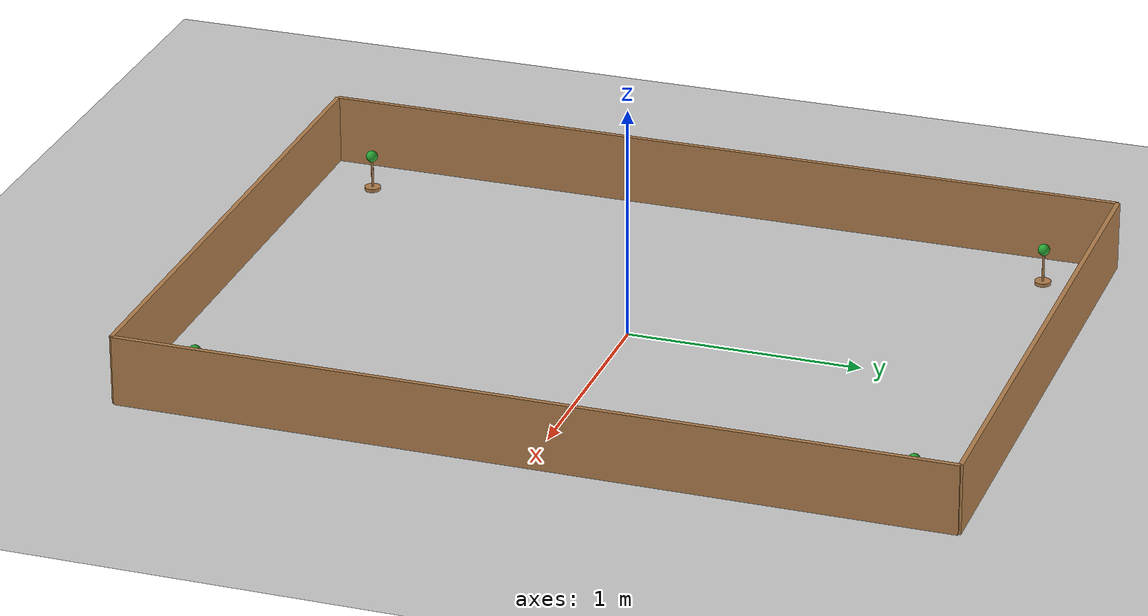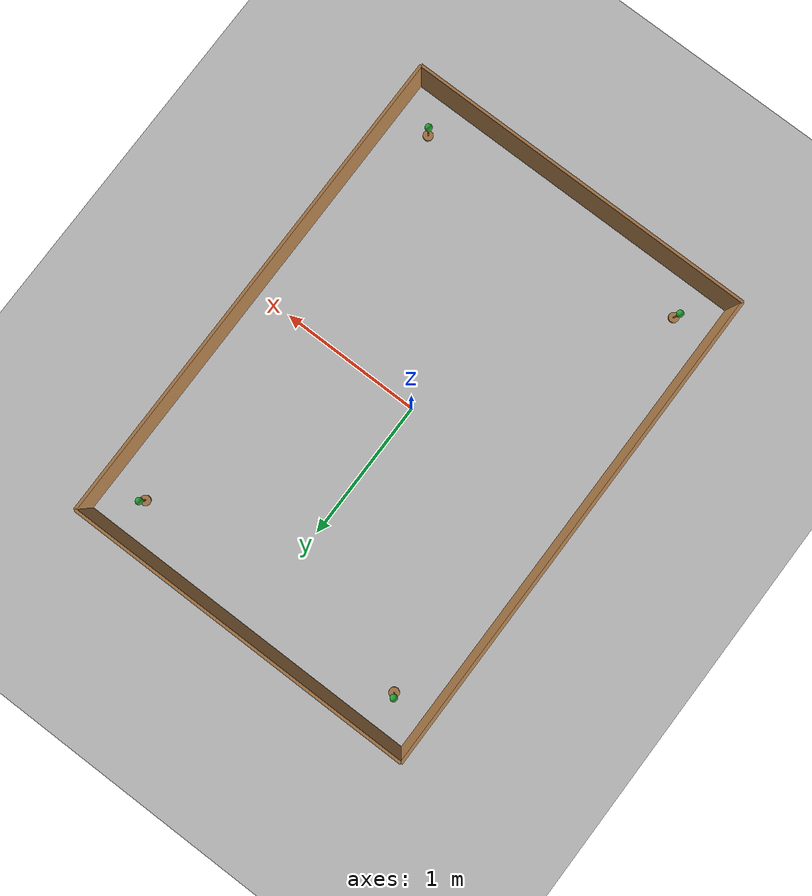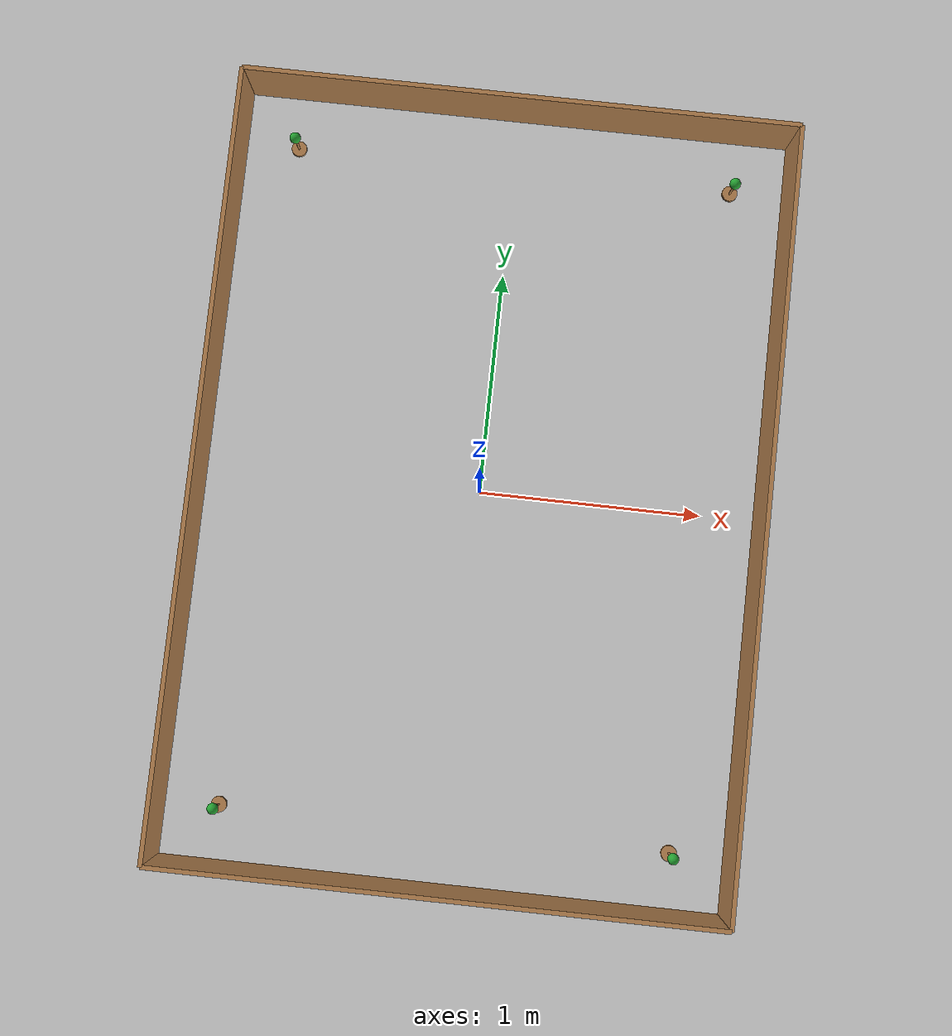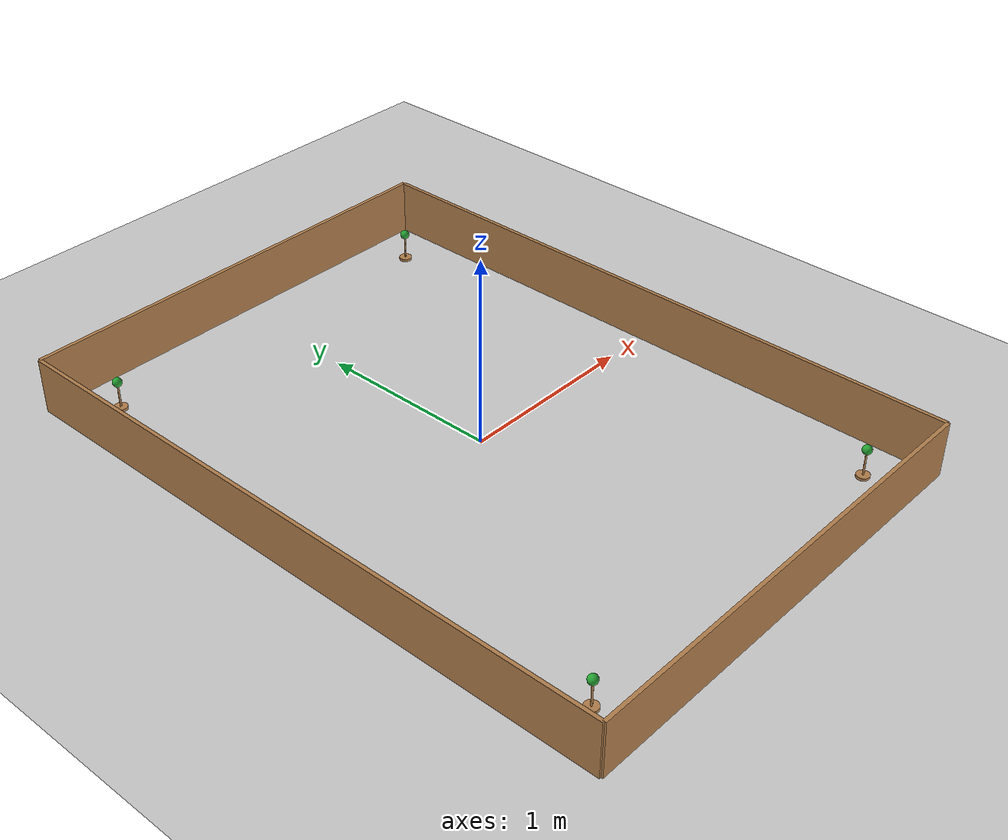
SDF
<?xml version="1.0" ?>
<sdf version="1.4">
  <world name="default">

    <gui>
      <camera name="default">
        <pose>0.25 -4.5 2.5 0 0.5 1.57</pose>
      </camera>
    </gui>

    <scene>
      <ambient>0.8 0.8 0.8 1</ambient>
      <background>0.7 0.7 0.7 1</background>
      <shadows>true</shadows>
    </scene>

    <!-- Add the ground -->
    <include>
      <uri>model://ground_plane</uri>
    </include>

    <include>
      <uri>model://walls</uri>
    </include>

    <include>
      <uri>model://mannequin</uri>
      <name>mannequin_NW</name>
      <pose>1 1.5 0 0 0 0</pose>
    </include>

    <include>
      <uri>model://mannequin</uri>
      <name>mannequin_NE</name>
      <pose>1 -1.5 0 0 0 0</pose>
    </include>

    <include>
      <uri>model://mannequin</uri>
      <name>mannequin_SE</name>
      <pose>-1 -1.5 0 0 0 0</pose>
    </include>

    <include>
      <uri>model://mannequin</uri>
      <name>mannequin_SW</name>
      <pose>-1 1.5 0 0 0 0</pose>
    </include>

  </world>
</sdf>

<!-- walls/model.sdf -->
<sdf version="1.6">
	<model name="christmas_walls">
		<link name="Wall_North">
			<pose frame=''>1.25 0 0 0 0 -1.5708</pose>
			<self_collide>0</self_collide>
			<kinematic>0</kinematic>

			<visual name="Wall_North_Visual">
				<pose frame=''>0 0 0.15 0 0 0</pose>

				<geometry>
					<box>
						<size>3.5 0.02 0.3</size>
					</box>
				</geometry>

				<material>
					<script>
						<uri>file://media/materials/scripts/gazebo.material</uri>
						<name>Gazebo/Wood</name>
					</script>

					<ambient>1 1 1 1</ambient>
					<diffuse>1 1 1 1</diffuse>
					<specular>0.2 0.2 0.2 1</specular>
					<emissive>0 0 0 1</emissive>
				</material>

				<cast_shadows>1</cast_shadows>
				<transparency>0</transparency>
			</visual>

			<collision name="Wall_North_Collision">
				<laser_retro>0</laser_retro>
				<max_contacts>10</max_contacts>
				<pose frame=''>0 0 0.15 0 0 0</pose>

				<geometry>
					<box>
						<size>3.5 0.02 0.3</size>
					</box>
				</geometry>

				<surface>
          			<friction>
            			<ode>
              				<mu>10</mu>
              				<mu2>10</mu2>
              				<fdir1>0 0 0</fdir1>
              				<slip1>0</slip1>
              				<slip2>0</slip2>
            			</ode>
            			<torsional>
              				<coefficient>1</coefficient>
              				<patch_radius>0</patch_radius>
              				<surface_radius>0</surface_radius>
              				<use_patch_radius>1</use_patch_radius>
              				<ode>
	                			<slip>0</slip>
              				</ode>
            			</torsional>
          			</friction>

          			<bounce>
            			<restitution_coefficient>0</restitution_coefficient>
            			<threshold>1e+06</threshold>
          			</bounce>

          			<contact>
            			<collide_without_contact>0</collide_without_contact>
            			<collide_without_contact_bitmask>1</collide_without_contact_bitmask>
            			<collide_bitmask>1</collide_bitmask>
            			<ode>
              				<soft_cfm>0</soft_cfm>
              				<soft_erp>0.2</soft_erp>
              				<kp>1e+13</kp>
              				<kd>1</kd>
              				<max_vel>0.01</max_vel>
              				<min_depth>0</min_depth>
            			</ode>
            			<bullet>
              				<split_impulse>1</split_impulse>
              				<split_impulse_penetration_threshold>-0.01</split_impulse_penetration_threshold>
              				<soft_cfm>0</soft_cfm>
              				<soft_erp>0.2</soft_erp>
              				<kp>1e+13</kp>
              				<kd>1</kd>
            			</bullet>
          			</contact>
        		</surface>
			</collision>

			<inertial>
			  <pose>0 0 0.15 0 0 0</pose>
			  <mass>1</mass>
			  <inertia>
			  	<ixx>0.0199</ixx>
			  	<iyy>1.019</iyy>
			  	<izz>1</izz>
			  	<ixy>0</ixy>
			  	<ixz>0</ixz>
			  	<iyz>0</iyz>
			  </inertia>
			</inertial>
		</link>

		<link name="Wall_South">
			<pose frame=''>-1.25 0 0 0 0 1.5708</pose>
			<self_collide>0</self_collide>
			<kinematic>0</kinematic>

			<visual name="Wall_South_Visual">
				<pose frame=''>0 0 0.15 0 0 0</pose>

				<geometry>
					<box>
						<size>3.5 0.02 0.3</size>
					</box>
				</geometry>

				<material>
					<script>
						<uri>file://media/materials/scripts/gazebo.material</uri>
						<name>Gazebo/Wood</name>
					</script>

					<ambient>1 1 1 1</ambient>
					<diffulse>1 1 1 1</diffulse>
					<specular>0.2 0.2 0.2 1</specular>
					<emissive>0 0 0 1</emissive>
				</material>

				<cast_shadows>1</cast_shadows>
				<transparency>0</transparency>
			</visual>

			<collision name="Wall_South_Collision">
				<laser_retro>0</laser_retro>
				<max_contacts>10</max_contacts>
				<pose frame=''>0 0 0.15 0 0 0</pose>

				<geometry>
					<box>
						<size>3.5 0.02 0.3</size>
					</box>
				</geometry>

				<surface>
          			<friction>
            			<ode>
              				<mu>1</mu>
              				<mu2>1</mu2>
              				<fdir1>0 0 0</fdir1>
              				<slip1>0</slip1>
              				<slip2>0</slip2>
            			</ode>
            			<torsional>
              				<coefficient>1</coefficient>
              				<patch_radius>0</patch_radius>
              				<surface_radius>0</surface_radius>
              				<use_patch_radius>1</use_patch_radius>
              				<ode>
	                			<slip>0</slip>
              				</ode>
            			</torsional>
          			</friction>

          			<bounce>
            			<restitution_coefficient>0</restitution_coefficient>
            			<threshold>1e+06</threshold>
          			</bounce>

          			<contact>
            			<collide_without_contact>0</collide_without_contact>
            			<collide_without_contact_bitmask>1</collide_without_contact_bitmask>
            			<collide_bitmask>1</collide_bitmask>
            			<ode>
              				<soft_cfm>0</soft_cfm>
              				<soft_erp>0.2</soft_erp>
              				<kp>1e+13</kp>
              				<kd>1</kd>
              				<max_vel>0.01</max_vel>
              				<min_depth>0</min_depth>
            			</ode>
            			<bullet>
              				<split_impulse>1</split_impulse>
              				<split_impulse_penetration_threshold>-0.01</split_impulse_penetration_threshold>
              				<soft_cfm>0</soft_cfm>
              				<soft_erp>0.2</soft_erp>
              				<kp>1e+13</kp>
              				<kd>1</kd>
            			</bullet>
          			</contact>
        		</surface>
			</collision>
			<inertial>
			  <pose>0 0 0.15 0 0 0</pose>
			  <mass>1</mass>
			  <inertia>
			  	<ixx>0.0199</ixx>
			  	<iyy>1.019</iyy>
			  	<izz>1.0</izz>
			  	<ixy>0</ixy>
			  	<ixz>0</ixz>
			  	<iyz>0</iyz>
			  </inertia>
			</inertial>
		</link>

		<link name="Wall_West">
			<pose frame=''>0 1.75 0 0 0 0</pose>
			<self_collide>0</self_collide>
			<kinematic>0</kinematic>

			<visual name="Wall_West_Visual">
				<pose frame=''>0 0 0.15 0 0 0</pose>

				<geometry>
					<box>
						<size>2.5 0.02 0.3</size>
					</box>
				</geometry>

				<material>
					<script>
						<uri>file://media/materials/scripts/gazebo.material</uri>
						<name>Gazebo/Wood</name>
					</script>

					<ambient>1 1 1 1</ambient>
					<diffulse>1 1 1 1</diffulse>
					<specular>0.2 0.2 0.2 1</specular>
					<emissive>0 0 0 1</emissive>
				</material>

				<cast_shadows>1</cast_shadows>
				<transparency>0</transparency>
			</visual>

			<collision name="Wall_West_Collision">
				<laser_retro>0</laser_retro>
				<max_contacts>10</max_contacts>
				<pose frame=''>0 0 0.15 0 0 0</pose>

				<geometry>
					<box>
						<size>2.5 0.02 0.3</size>
					</box>
				</geometry>

				<surface>
          			<friction>
            			<ode>
              				<mu>1</mu>
              				<mu2>1</mu2>
              				<fdir1>0 0 0</fdir1>
              				<slip1>0</slip1>
              				<slip2>0</slip2>
            			</ode>
            			<torsional>
              				<coefficient>1</coefficient>
              				<patch_radius>0</patch_radius>
              				<surface_radius>0</surface_radius>
              				<use_patch_radius>1</use_patch_radius>
              				<ode>
	                			<slip>0</slip>
              				</ode>
            			</torsional>
          			</friction>

          			<bounce>
            			<restitution_coefficient>0</restitution_coefficient>
            			<threshold>1e+06</threshold>
          			</bounce>

          			<contact>
            			<collide_without_contact>0</collide_without_contact>
            			<collide_without_contact_bitmask>1</collide_without_contact_bitmask>
            			<collide_bitmask>1</collide_bitmask>
            			<ode>
              				<soft_cfm>0</soft_cfm>
              				<soft_erp>0.2</soft_erp>
              				<kp>1e+13</kp>
              				<kd>1</kd>
              				<max_vel>0.01</max_vel>
              				<min_depth>0</min_depth>
            			</ode>
            			<bullet>
              				<split_impulse>1</split_impulse>
              				<split_impulse_penetration_threshold>-0.01</split_impulse_penetration_threshold>
              				<soft_cfm>0</soft_cfm>
              				<soft_erp>0.2</soft_erp>
              				<kp>1e+13</kp>
              				<kd>1</kd>
            			</bullet>
          			</contact>
        		</surface>
			</collision>
			<inertial>
			  <pose>0 0 0.15 0 0 0</pose>
			  <mass>1</mass>
			  <inertia>
			  	<ixx>0.0199</ixx>
			  	<iyy>1.019</iyy>
			  	<izz>1.0</izz>
			  	<ixy>0</ixy>
			  	<ixz>0</ixz>
			  	<iyz>0</iyz>
			  </inertia>
			</inertial>
		</link>

		<link name="Wall_East">
			<pose frame=''>0 -1.75 0 0 0 0</pose>
			<self_collide>0</self_collide>
			<kinematic>0</kinematic>

			<visual name="Wall_East_Visual">
				<pose frame=''>0 0 0.15 0 0 0</pose>

				<geometry>
					<box>
						<size>2.5 0.02 0.3</size>
					</box>
				</geometry>

				<material>
					<script>
						<uri>file://media/materials/scripts/gazebo.material</uri>
						<name>Gazebo/Wood</name>
					</script>

					<ambient>1 1 1 1</ambient>
					<diffulse>1 1 1 1</diffulse>
					<specular>0.2 0.2 0.2 1</specular>
					<emissive>0 0 0 1</emissive>
				</material>

				<cast_shadows>1</cast_shadows>
				<transparency>0</transparency>
			</visual>

			<collision name="Wall_East_Collision">
				<laser_retro>0</laser_retro>
				<max_contacts>10</max_contacts>
				<pose frame=''>0 0 0.15 0 0 0</pose>

				<geometry>
					<box>
						<size>2.5 0.02 0.3</size>
					</box>
				</geometry>

				<surface>
          			<friction>
            			<ode>
              				<mu>1</mu>
              				<mu2>1</mu2>
              				<fdir1>0 0 0</fdir1>
              				<slip1>0</slip1>
              				<slip2>0</slip2>
            			</ode>
            			<torsional>
              				<coefficient>1</coefficient>
              				<patch_radius>0</patch_radius>
              				<surface_radius>0</surface_radius>
              				<use_patch_radius>1</use_patch_radius>
              				<ode>
	                			<slip>0</slip>
              				</ode>
            			</torsional>
          			</friction>

          			<bounce>
            			<restitution_coefficient>0</restitution_coefficient>
            			<threshold>1e+06</threshold>
          			</bounce>

          			<contact>
            			<collide_without_contact>0</collide_without_contact>
            			<collide_without_contact_bitmask>1</collide_without_contact_bitmask>
            			<collide_bitmask>1</collide_bitmask>
            			<ode>
              				<soft_cfm>0</soft_cfm>
              				<soft_erp>0.2</soft_erp>
              				<kp>1e+13</kp>
              				<kd>1</kd>
              				<max_vel>0.01</max_vel>
              				<min_depth>0</min_depth>
            			</ode>
            			<bullet>
              				<split_impulse>1</split_impulse>
              				<split_impulse_penetration_threshold>-0.01</split_impulse_penetration_threshold>
              				<soft_cfm>0</soft_cfm>
              				<soft_erp>0.2</soft_erp>
              				<kp>1e+13</kp>
              				<kd>1</kd>
            			</bullet>
          			</contact>
        		</surface>
			</collision>
			<inertial>
			  <pose>0 0 0.15 0 0 0</pose>
			  <mass>1</mass>
			  <inertia>
			  	<ixx>0.0199</ixx>
			  	<iyy>1.019</iyy>
			  	<izz>1.0</izz>
			  	<ixy>0</ixy>
			  	<ixz>0</ixz>
			  	<iyz>0</iyz>
			  </inertia>
			</inertial>
		</link>

		<joint name="north_east_joint" type="fixed">
			<parent>Wall_North</parent>
			<child>Wall_East</child>
		</joint>
		<joint name="north_south_joint" type="fixed">
			<parent>Wall_North</parent>
			<child>Wall_South</child>
		</joint>
		<joint name="north_west_joint" type="fixed">
			<parent>Wall_North</parent>
			<child>Wall_West</child>
		</joint>

	</model>
</sdf>

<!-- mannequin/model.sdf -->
<sdf version="1.6">
	<model name="mannequin">

        <link name="Pedestal">
        	<pose frame=''>0 0 0.0075 0 0 0</pose>
			<self_collide>0</self_collide>
			<kinematic>0</kinematic>
			<visual name="Pedestal_Visual">
				<geometry>
					<cylinder>
						<radius>0.035</radius>
						<length>0.015</length>
					</cylinder>
				</geometry>
				<material>
					<script>
						<uri>file://media/materials/scripts/gazebo.material</uri>
						<name>Gazebo/Wood</name>

						<ambient>1 1 1 1</ambient>
						<diffuse>1 1 1 1</diffuse>
						<specular>0.2 0.2 0.2 1</specular>
						<emissive>0 0 0 1</emissive>
					</script>
				</material>
				<cast_shadows>1</cast_shadows>
				<transparency>0</transparency>
			</visual>

			<collision name="Pedestal_Collision">
				<laser_retro>1</laser_retro>
				<max_contacts>10</max_contacts>
				<pose frame=''>0 0 0.1175 0 0 0</pose>
				<geometry>
					<cylinder>
						<radius>0.025</radius>
						<length>0.25</length>
					</cylinder>
				</geometry>
			</collision>

			<visual name="Body_Visual">
				<pose>0 0 0.075 0 0 0</pose>

				<geometry>
					<cylinder>
						<radius>0.005</radius>
						<length>0.15</length>
					</cylinder>
				</geometry>

				<material>
					<script>
						<uri>file://media/materials/scripts/gazebo.material</uri>
						<name>Gazebo/Wood</name>

						<ambient>1 1 1 1</ambient>
						<diffuse>1 1  11</diffuse>
						<specular>0.2 0.2 0.2 1</specular>
						<emissive>0 0 0 1</emissive>
					</script>
				</material>

				<cast_shadows>1</cast_shadows>
				<transparency>0</transparency>
			</visual>

			<visual name="Head_Visual">
				<pose>0 0 0.15 0 0 0</pose>

				<geometry>
					<sphere>
						<radius>0.025</radius>
					</sphere>

				</geometry>

				<material>
					<script>
						<uri>file://media/materials/scripts/gazebo.material</uri>
						<name>Gazebo/Green</name>

						<ambient>1 1 1 1</ambient>
						<diffuse>1 1  11</diffuse>
						<specular>0.2 0.2 0.2 1</specular>
						<emissive>0 0 0 1</emissive>
					</script>
				</material>

				<cast_shadows>1</cast_shadows>
				<transparency>0</transparency>
			</visual>

        </link>
	</model>
</sdf>
